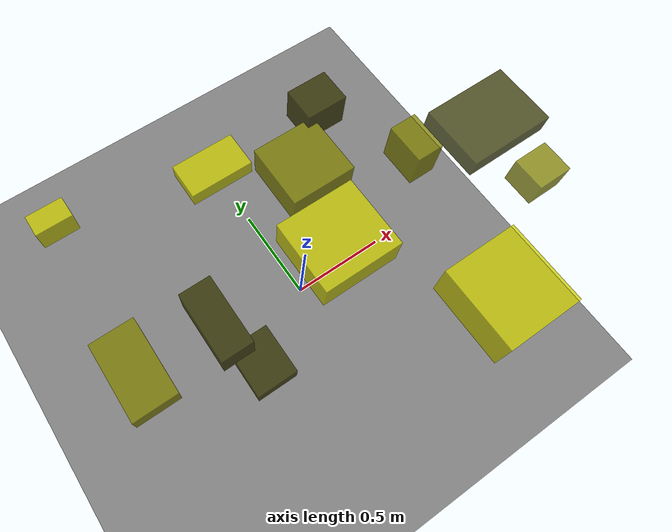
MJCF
<?xml version="1.0"?>
<mujoco model="obstacle_scene">
  <compiler angle="radian" coordinate="local"/>
  <option timestep="0.001" gravity="0 0 -9.81"/>

  <asset>
    <material name="obstacle_mat" rgba="0.8 0.8 0.0 0.8"/>
    <material name="ground_mat" rgba="0.5 0.5 0.5 1"/>
  </asset>

  <worldbody>
    <!-- Ground plane -->
    <geom name="ground" type="plane" size="3 3 0.1" material="ground_mat"/>

    <!-- Obstacles -->
    <body name="obstacle_0" pos="0.605983 -0.179136 1.301195">
      <geom name="obs_0" type="box" size="0.167895 0.124995 0.039159" rgba="0.2 0.2 0.0 0.8"/>
    </body>
    <body name="obstacle_1" pos="-0.907583 -0.009579 0.420831">
      <geom name="obs_1" type="box" size="0.112038 0.198338 0.057023" rgba="0.5 0.5 0.0 0.8"/>
    </body>
    <body name="obstacle_2" pos="0.499888 -0.659892 0.751861">
      <geom name="obs_2" type="box" size="0.179654 0.191164 0.104051" rgba="0.8 0.8 0.0 0.8"/>
    </body>
    <body name="obstacle_3" pos="0.642450 0.785802 0.218903">
      <geom name="obs_3" type="box" size="0.122133 0.101917 0.111867" rgba="0.2 0.2 0.0 0.8"/>
    </body>
    <body name="obstacle_4" pos="0.387606 0.537619 0.130365">
      <geom name="obs_4" type="box" size="0.193496 0.192056 0.103640" rgba="0.5 0.5 0.0 0.8"/>
    </body>
    <body name="obstacle_5" pos="-0.894507 0.914562 0.286528">
      <geom name="obs_5" type="box" size="0.099401 0.060060 0.076253" rgba="0.8 0.8 0.0 0.8"/>
    </body>
    <body name="obstacle_6" pos="-0.484087 0.015550 0.277410">
      <geom name="obs_6" type="box" size="0.086157 0.190895 0.090877" rgba="0.2 0.2 0.0 0.8"/>
    </body>
    <body name="obstacle_7" pos="0.728581 0.144099 0.557793">
      <geom name="obs_7" type="box" size="0.070838 0.104351 0.110089" rgba="0.5 0.5 0.0 0.8"/>
    </body>
    <body name="obstacle_8" pos="-0.156781 0.520272 0.681567">
      <geom name="obs_8" type="box" size="0.152806 0.088083 0.041577" rgba="0.8 0.8 0.0 0.8"/>
    </body>
    <body name="obstacle_9" pos="-0.394152 -0.234726 0.145974">
      <geom name="obs_9" type="box" size="0.108636 0.133345 0.053867" rgba="0.2 0.2 0.0 0.8"/>
    </body>
    <body name="obstacle_10" pos="0.717879 -0.404937 1.147273">
      <geom name="obs_10" type="box" size="0.070855 0.065648 0.061466" rgba="0.5 0.5 0.0 0.8"/>
    </body>
    <body name="obstacle_11" pos="0.057524 -0.118062 0.805917">
      <geom name="obs_11" type="box" size="0.184918 0.170494 0.081965" rgba="0.8 0.8 0.0 0.8"/>
    </body>
  </worldbody>
</mujoco>
